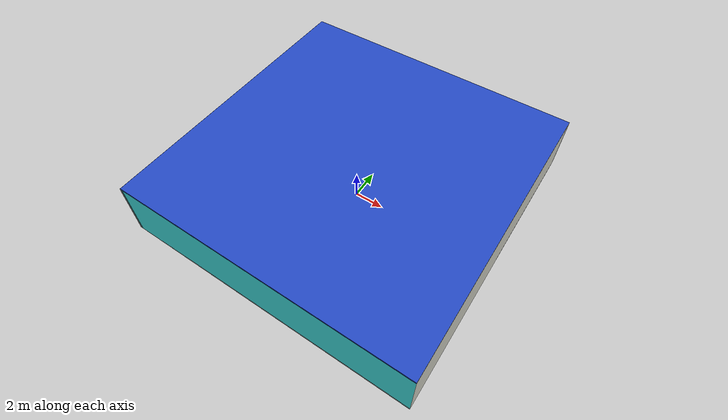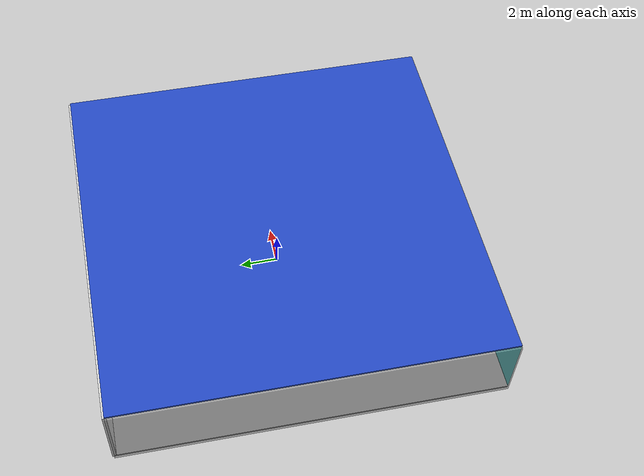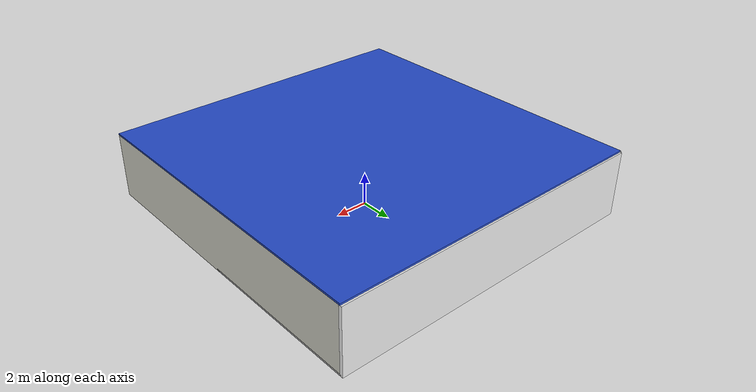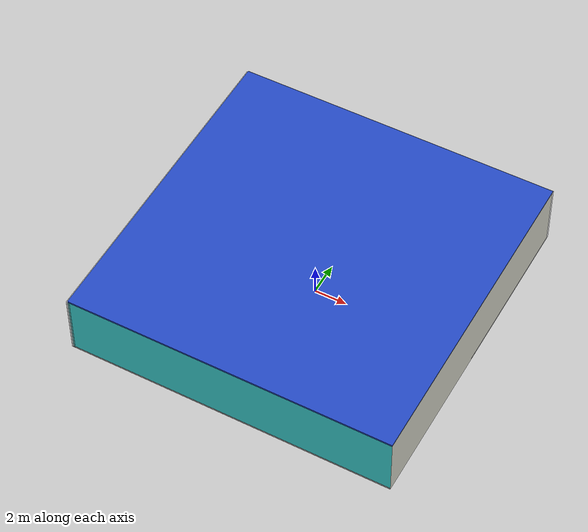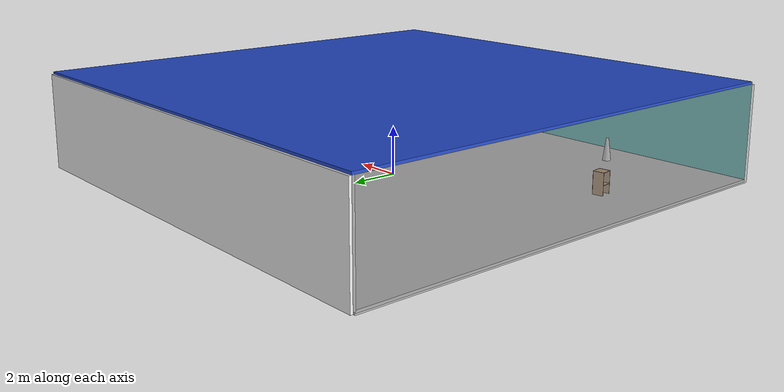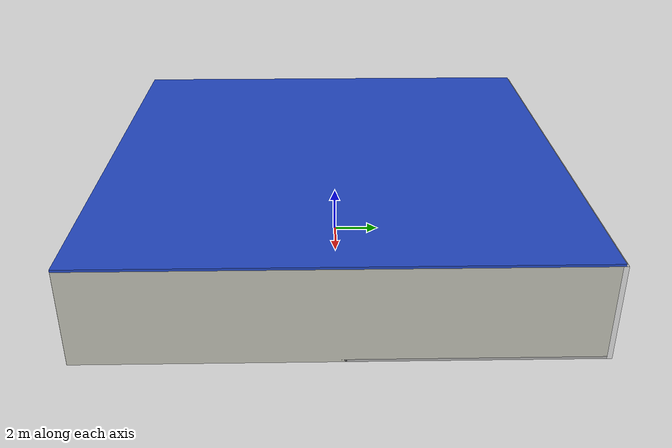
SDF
<sdf version="1.4">
 <world name="default">
  <physics type="ode">
   <max_step_size>0.001</max_step_size>
   <real_time_factor>1</real_time_factor>
   <real_time_update_rate>1000</real_time_update_rate>
   <gravity>0 0 -9.8</gravity>
  </physics>
  <scene><ambient>0.4 0.4 0.4 1</ambient><background>0.7 0.7 0.7 1</background><shadows>1</shadows></scene>
  <model name="Surrounding">
   <static>1</static>
   <link name="Ceiling">
    <collision name="Ceiling_Collision"><geometry><box><size>20 20 0.1</size></box></geometry></collision>
    <visual name="Ceiling_Visual">
     <geometry><box><size>20 20 0.1</size></box></geometry>
     <material>
      <script><uri>file://media/materials/scripts/gazebo.material</uri><name>Gazebo/BlueLaser</name></script>
     </material>
    </visual>
    <pose>0 0 4.05 0 0 0</pose>
   </link>
   <link name="Wall_South">
    <collision name="Wall_South_Collision">
     <geometry><box><size>20 0 4</size></box></geometry>
     <pose>0 0 2 0 -0 0</pose>
    </collision>
    <visual name="Wall_South_Visual">
     <pose>0 0 2 0 -0 0</pose>
     <geometry><box><size>20 0 4</size></box></geometry>
     <material>
      <script><uri>file://media/materials/scripts/gazebo.material</uri><name>Gazebo/TurquoiseGlow</name></script>
     </material>
    </visual>
    <velocity_decay><linear>0</linear><angular>0</angular></velocity_decay>
    <pose>0 -10 0 0 -0 0</pose>
   </link>
   <link name="Wall_East">
    <collision name="Wall_21_Collision">
     <geometry><box><size>20 0 4</size></box></geometry>
     <pose>0 0 2 0 -0 0</pose>
    </collision>
    <visual name="Wall_21_Visual">
     <pose>0 0 2 0 -0 0</pose>
     <geometry><box><size>20 0 4</size></box></geometry>
     <material>
      <script><uri>file://media/materials/scripts/gazebo.material</uri><name>Gazebo/PaintedWall</name></script>
     </material>
    </visual>
    <velocity_decay><linear>0</linear><angular>0</angular></velocity_decay>
    <pose>10 0 0 0 -0 1.5708</pose>
   </link>
   <link name="Wall_North">
    <collision name="Wall_22_Collision">
     <geometry><box><size>20 0.2 4</size></box></geometry>
     <pose>0 0 2 0 -0 0</pose>
    </collision>
    <visual name="Wall_22_Visual">
     <pose>0 0 2 0 -0 0</pose>
     <geometry><box><size>20 0.2 4</size></box></geometry>
     <material>
      <script><uri>file://media/materials/scripts/gazebo.material</uri><name>Gazebo/WhiteGlow</name></script>
     </material>
    </visual>
    <velocity_decay><linear>0</linear><angular>0</angular></velocity_decay>
    <pose>0 10 0 0 -0 0</pose>
   </link>
   <link name="Wall_West">
    <collision name="Wall_23_Collision">
     <geometry><box><size>20 0.2 4</size></box></geometry>
     <pose>0 0 2 0 -0 0</pose>
    </collision>
    <visual name="Wall_23_Visual">
     <pose>0 0 2 0 -0 0</pose>
     <geometry><box><size>20 0.2 4</size></box></geometry>
     <material>
      <script><uri>file://media/materials/scripts/gazebo.material</uri><name>Gazebo/GreyTransparent</name></script>
     </material>
    </visual>
    <velocity_decay><linear>0</linear><angular>0</angular></velocity_decay>
    <pose>-10 0 0 0 0 -1.5708</pose>
   </link>
   <link name="Ground_link">
    <collision name="collision">
     <pose>0 0 .05 0 -0 0</pose>
     <geometry><box><size>20 20 0.1</size></box></geometry>
    </collision>
    <visual name="visual">
     <pose>0 0 .05 0 -0 0</pose>
     <geometry><box><size>20 20 0.1</size></box></geometry>
     <material>
      <script><uri>file://media/materials/scripts/gazebo.material</uri><name>Gazebo/CloudySky</name></script>
     </material>
    </visual>
   </link>
   <static>1</static>
  </model>
  <spherical_coordinates>
   <surface_model>EARTH_WGS84</surface_model>
   <latitude_deg>0</latitude_deg>
   <longitude_deg>0</longitude_deg>
   <elevation>0</elevation>
   <heading_deg>0</heading_deg>
  </spherical_coordinates>
  <light name="lightball_0" type="diffuse">
   <diffuse>0.8 0.8 0.8 1</diffuse>
   <specular>0.2 0.2 0.2 1</specular>
   <attenuation>
    <range>100</range>
    <constant>0.7</constant>
    <linear>0.01</linear>
    <quadratic>0.001</quadratic>
   </attenuation>
   <direction>-0.5 0.1 -0.9</direction>
   <pose>4.8939191614 9.32072646609 1.46523766127 0 0 0</pose>
  </light>
  <light name="lightball_1" type="diffuse">
   <diffuse>0.8 0.8 0.8 1</diffuse>
   <specular>0.2 0.2 0.2 1</specular>
   <attenuation>
    <range>100</range>
    <constant>0.7</constant>
    <linear>0.01</linear>
    <quadratic>0.001</quadratic>
   </attenuation>
   <direction>-0.5 0.1 -0.9</direction>
   <pose>-1.97290619913 -4.1263792323 0.915828953086 0 0 0</pose>
  </light>
  <light name="lightball_2" type="diffuse">
   <diffuse>0.8 0.8 0.8 1</diffuse>
   <specular>0.2 0.2 0.2 1</specular>
   <attenuation>
    <range>100</range>
    <constant>0.7</constant>
    <linear>0.01</linear>
    <quadratic>0.001</quadratic>
   </attenuation>
   <direction>-0.5 0.1 -0.9</direction>
   <pose>-9.96269895047 1.0470107274 3.32632293629 0 0 0</pose>
  </light>
  <light name="lightball_3" type="diffuse">
   <diffuse>0.8 0.8 0.8 1</diffuse>
   <specular>0.2 0.2 0.2 1</specular>
   <attenuation>
    <range>100</range>
    <constant>0.7</constant>
    <linear>0.01</linear>
    <quadratic>0.001</quadratic>
   </attenuation>
   <direction>-0.5 0.1 -0.9</direction>
   <pose>-3.91532110716 4.03598083177 2.49984798196 0 0 0</pose>
  </light>
  <light name="lightball_4" type="diffuse">
   <diffuse>0.8 0.8 0.8 1</diffuse>
   <specular>0.2 0.2 0.2 1</specular>
   <attenuation>
    <range>100</range>
    <constant>0.7</constant>
    <linear>0.01</linear>
    <quadratic>0.001</quadratic>
   </attenuation>
   <direction>-0.5 0.1 -0.9</direction>
   <pose>-5.0893169725 8.24384698765 0.84884518126 0 0 0</pose>
  </light>
  <light name="lightball_5" type="diffuse">
   <diffuse>0.8 0.8 0.8 1</diffuse>
   <specular>0.2 0.2 0.2 1</specular>
   <attenuation>
    <range>100</range>
    <constant>0.7</constant>
    <linear>0.01</linear>
    <quadratic>0.001</quadratic>
   </attenuation>
   <direction>-0.5 0.1 -0.9</direction>
   <pose>-3.14058831239 7.84775054047 1.54066691102 0 0 0</pose>
  </light>
  <light name="lightball_6" type="diffuse">
   <diffuse>0.8 0.8 0.8 1</diffuse>
   <specular>0.2 0.2 0.2 1</specular>
   <attenuation>
    <range>100</range>
    <constant>0.7</constant>
    <linear>0.01</linear>
    <quadratic>0.001</quadratic>
   </attenuation>
   <direction>-0.5 0.1 -0.9</direction>
   <pose>-9.04627884509 -1.14343500035 1.96002968103 0 0 0</pose>
  </light>
  <light name="lightball_7" type="diffuse">
   <diffuse>0.8 0.8 0.8 1</diffuse>
   <specular>0.2 0.2 0.2 1</specular>
   <attenuation>
    <range>100</range>
    <constant>0.7</constant>
    <linear>0.01</linear>
    <quadratic>0.001</quadratic>
   </attenuation>
   <direction>-0.5 0.1 -0.9</direction>
   <pose>-4.92354761699 -6.7133625707 3.13159532389 0 0 0</pose>
  </light>
  <include><uri>model://cabinet</uri><pose>-7.48096215027 -4.04769207114 0 0 0 0.15421579962</pose></include>
  <include>
   <uri>model://construction_cone</uri>
   <pose>-4.51346423773 -8.2160576957 0 0 0 2.17305511854</pose>
  </include>
  <include>
   <uri>model://robocup_3Dsim_goal</uri>
   <pose>1.87031728855 7.11393413833 0 0 0 2.04962959368</pose>
  </include>
  <include><uri>model://cabinet</uri><pose>4.01562477453 1.99280462326 0 0 0 1.24851041816</pose></include>
  <include>
   <uri>model://textured_shapes</uri>
   <pose>5.14686963332 5.11761914151 0 0 0 1.72784510158</pose>
  </include>
 </world>
</sdf>

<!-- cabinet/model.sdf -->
<sdf version="1.5">
  <model name="cabinet">
    <static>true</static>
    <link name="cabinet_bottom_plate">
      <inertial>
        <pose>0 0 -1 0 0 0</pose>
        <inertia>
          <ixx>2.050000</ixx>
          <ixy>0</ixy>
          <ixz>0</ixz>
          <iyy>2.050000</iyy>
          <iyz>0</iyz>
          <izz>2.050000</izz>
        </inertia>
        <mass>25.000000</mass>
      </inertial>
      <collision name="cabinet_bottom_plate_geom">
        <pose>0 0 0.010000 0 0 0</pose>
        <geometry>
          <box>
            <size>0.450000 0.450000 0.020000</size>
          </box>
        </geometry>
      </collision>
      <visual name="cabinet_bottom_plate_geom_visual">
        <pose>0 0 0.010000 0 0 0</pose>
        <geometry>
          <box>
            <size>0.450000 0.450000 0.020000</size>
          </box>
        </geometry>
        <material>
          <script>
            <uri>model://media/materials/scripts/gazebo.material</uri>
            <name>Gazebo/Wood</name>
          </script>
        </material>
      </visual>
      <collision name="cabinet_bottom_plate_geom_cabinet_back_plate">
        <pose>0.235000 0 0.510000 0 0 0</pose>
        <geometry>
          <box>
            <size>0.020000 0.450000 1.020000</size>
          </box>
        </geometry>
      </collision>
      <visual name="cabinet_bottom_plate_geom_cabinet_back_plate_visual">
        <pose>0.235000 0 0.510000 0 0 0</pose>
        <geometry>
          <box>
            <size>0.020000 0.450000 1.020000</size>
          </box>
        </geometry>
        <material>
          <script>
            <uri>model://media/materials/scripts/gazebo.material</uri>
            <name>Gazebo/Wood</name>
          </script>
        </material>
      </visual>
      <collision name="cabinet_bottom_plate_geom_cabinet_left_plate">
        <pose>0 0.235000 0.510000 0 0 0</pose>
        <geometry>
          <box>
            <size>0.450000 0.020000 1.020000</size>
          </box>
        </geometry>
      </collision>
      <visual name="cabinet_bottom_plate_geom_cabinet_left_plate_visual">
        <pose>0 0.235000 0.510000 0 0 0</pose>
        <geometry>
          <box>
            <size>0.450000 0.020000 1.020000</size>
          </box>
        </geometry>
        <material>
          <script>
            <uri>model://media/materials/scripts/gazebo.material</uri>
            <name>Gazebo/Wood</name>
          </script>
        </material>
      </visual>
      <collision name="cabinet_bottom_plate_geom_cabinet_middle_plate">
        <pose>0 0 0.510000 0 0 0</pose>
        <geometry>
          <box>
            <size>0.450000 0.450000 0.020000</size>
          </box>
        </geometry>
      </collision>
      <visual name="cabinet_bottom_plate_geom_cabinet_middle_plate_visual">
        <pose>0 0 0.510000 0 0 0</pose>
        <geometry>
          <box>
            <size>0.450000 0.450000 0.020000</size>
          </box>
        </geometry>
        <material>
          <script>
            <uri>model://media/materials/scripts/gazebo.material</uri>
            <name>Gazebo/Wood</name>
          </script>
        </material>
      </visual>
      <collision name="cabinet_bottom_plate_geom_cabinet_right_plate">
        <pose>0 -0.235000 0.510000 0 0 0</pose>
        <geometry>
          <box>
            <size>0.450000 0.020000 1.020000</size>
          </box>
        </geometry>
      </collision>
      <visual name="cabinet_bottom_plate_geom_cabinet_right_plate_visual">
        <pose>0 -0.235000 0.510000 0 0 0</pose>
        <geometry>
          <box>
            <size>0.450000 0.020000 1.020000</size>
          </box>
        </geometry>
        <material>
          <script>
            <uri>model://media/materials/scripts/gazebo.material</uri>
            <name>Gazebo/Wood</name>
          </script>
        </material>
      </visual>
      <collision name="cabinet_bottom_plate_geom_cabinet_top_plate">
        <pose>0 0 1.010000 0 0 0</pose>
        <geometry>
          <box>
            <size>0.450000 0.450000 0.020000</size>
          </box>
        </geometry>
      </collision>
      <visual name="cabinet_bottom_plate_geom_cabinet_top_plate_visual">
        <pose>0 0 1.010000 0 0 0</pose>
        <geometry>
          <box>
            <size>0.450000 0.450000 0.020000</size>
          </box>
        </geometry>
        <material>
          <script>
            <uri>model://media/materials/scripts/gazebo.material</uri>
            <name>Gazebo/Wood</name>
          </script>
        </material>
      </visual>
    </link>
  </model>
</sdf>

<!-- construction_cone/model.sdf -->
<sdf version="1.5">
  <model name="Construction Cone">
    <link name="link">
      <collision name="collision">
        <geometry>
          <mesh>
            <scale>10 10 10</scale>
            <uri>file://isr-testbed/construction_cone/meshes/construction_cone.dae</uri>
          </mesh>
        </geometry>
      </collision>
      <visual name="visual">
        <geometry>
          <mesh>
            <scale>10 10 10</scale>
            <uri>file://isr-testbed/construction_cone/meshes/construction_cone.dae</uri>
          </mesh>
        </geometry>
      </visual>
    </link>
  </model>
</sdf>

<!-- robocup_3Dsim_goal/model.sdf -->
<sdf version="1.5">
  <model name="robocup_3d_goal">
    <static>true</static>
    <link name="left_post">
      <pose>0 1.05 0.45 0 0 0</pose>
      <collision name="collision">
        <geometry>
          <cylinder>
            <radius>0.05</radius>
            <length>0.9</length>
          </cylinder>
        </geometry>
      </collision>
      <visual name="visual">
        <geometry>
          <cylinder>
            <radius>0.05</radius>
            <length>0.9</length>
          </cylinder>
        </geometry>
        <material>
          <script>
            <uri>file://media/materials/scripts/gazebo.material</uri>
            <name>Gazebo/ZincYellow</name>
          </script>
        </material>
      </visual>
    </link>
    <link name="left_support_horiz_lower">
      <pose>0.30 1.05 0.01 0 0 0</pose>
      <collision name="collision">
        <geometry>
          <box>
            <size>0.50 0.02 0.02</size>
          </box>
        </geometry>
      </collision>
      <visual name="visual">
        <geometry>
          <box>
            <size>0.50 0.02 0.02</size>
          </box>
        </geometry>
        <material>
          <script>
            <uri>file://media/materials/scripts/gazebo.material</uri>
            <name>Gazebo/White</name>
          </script>
        </material>
      </visual>
    </link>
    <link name="left_support_horiz_upper">
      <pose>0.30 1.05 0.79 0 0 0</pose>
      <collision name="collision">
        <geometry>
          <box>
            <size>0.50 0.02 0.02</size>
          </box>
        </geometry>
      </collision>
      <visual name="visual">
        <geometry>
          <box>
            <size>0.50 0.02 0.02</size>
          </box>
        </geometry>
        <material>
          <script>
            <uri>file://media/materials/scripts/gazebo.material</uri>
            <name>Gazebo/White</name>
          </script>
        </material>
      </visual>
    </link>
    <link name="left_support_vertical">
      <pose>0.56 1.05 0.4 0 1.5708 0</pose>
      <collision name="collision">
        <geometry>
          <box>
            <size>0.80 0.02 0.02</size>
          </box>
        </geometry>
      </collision>
      <visual name="visual">
        <geometry>
          <box>
            <size>0.80 0.02 0.02</size>
          </box>
        </geometry>
        <material>
          <script>
            <uri>file://media/materials/scripts/gazebo.material</uri>
            <name>Gazebo/White</name>
          </script>
        </material>
      </visual>
    </link>
    <link name="right_support_horiz_lower">
      <pose>0.30 -1.05 0.01 0 0 0</pose>
      <collision name="collision">
        <geometry>
          <box>
            <size>0.50 0.02 0.02</size>
          </box>
        </geometry>
      </collision>
      <visual name="visual">
        <geometry>
          <box>
            <size>0.50 0.02 0.02</size>
          </box>
        </geometry>
        <material>
          <script>
            <uri>file://media/materials/scripts/gazebo.material</uri>
            <name>Gazebo/White</name>
          </script>
        </material>
      </visual>
    </link>
    <link name="right_support_horiz_upper">
      <pose>0.30 -1.05 0.79 0 0 0</pose>
      <collision name="collision">
        <geometry>
          <box>
            <size>0.50 0.02 0.02</size>
          </box>
        </geometry>
      </collision>
      <visual name="visual">
        <geometry>
          <box>
            <size>0.50 0.02 0.02</size>
          </box>
        </geometry>
        <material>
          <script>
            <uri>file://media/materials/scripts/gazebo.material</uri>
            <name>Gazebo/White</name>
          </script>
        </material>
      </visual>
    </link>
    <link name="right_support_vertical">
      <pose>0.56 -1.05 0.4 0 1.5708 0</pose>
      <collision name="collision">
        <geometry>
          <box>
            <size>0.80 0.02 0.02</size>
          </box>
        </geometry>
      </collision>
      <visual name="visual">
        <geometry>
          <box>
            <size>0.80 0.02 0.02</size>
          </box>
        </geometry>
        <material>
          <script>
            <uri>file://media/materials/scripts/gazebo.material</uri>
            <name>Gazebo/White</name>
          </script>
        </material>
      </visual>
    </link>
    <link name="center_support_horiz_lower">
      <pose>0.56 0 0.01 0 1.5708 0</pose>
      <collision name="collision">
        <geometry>
          <box>
            <size>0.02 2.08 0.02</size>
          </box>
        </geometry>
      </collision>
      <visual name="visual">
        <geometry>
          <box>
            <size>0.02 2.08 0.02</size>
          </box>
        </geometry>
        <material>
          <script>
            <uri>file://media/materials/scripts/gazebo.material</uri>
            <name>Gazebo/White</name>
          </script>
        </material>
      </visual>
    </link>
    <link name="center_support_horiz_upper">
      <pose>0.56 0 0.79 0 1.5708 0</pose>
      <collision name="collision">
        <geometry>
          <box>
            <size>0.02 2.08 0.02</size>
          </box>
        </geometry>
      </collision>
      <visual name="visual">
        <geometry>
          <box>
            <size>0.02 2.08 0.02</size>
          </box>
        </geometry>
        <material>
          <script>
            <uri>file://media/materials/scripts/gazebo.material</uri>
            <name>Gazebo/White</name>
          </script>
        </material>
      </visual>
    </link>
    <link name="right_post">
      <pose>0 -1.05 0.45 0 0 0</pose>
      <collision name="collision">
        <geometry>
          <cylinder>
            <radius>0.05</radius>
            <length>0.9</length>
          </cylinder>
        </geometry>
      </collision>
      <visual name="visual">
        <geometry>
          <cylinder>
            <radius>0.05</radius>
            <length>0.9</length>
          </cylinder>
        </geometry>
        <material>
          <script>
            <uri>file://media/materials/scripts/gazebo.material</uri>
            <name>Gazebo/ZincYellow</name>
          </script>
        </material>
      </visual>
    </link>
    <link name="crossbar">
      <pose>0 0 0.85 1.57 1.57 0</pose>
      <collision name="collision">
        <geometry>
          <cylinder>
            <radius>0.05</radius>
            <length>2.0</length>
          </cylinder>
        </geometry>
      </collision>
      <visual name="visual">
        <geometry>
          <cylinder>
            <radius>0.05</radius>
            <length>2.0</length>
          </cylinder>
        </geometry>
        <material>
          <script>
            <uri>file://media/materials/scripts/gazebo.material</uri>
            <name>Gazebo/ZincYellow</name>
          </script>
        </material>
      </visual>
    </link>
    <link name="center_net">
      <pose>0.56 0 0.40 0 0 0</pose>
      <collision name="collision">
        <geometry>
          <box>
            <size>0.01 2.1 0.80</size>
          </box>
        </geometry>
      </collision>
      <visual name="visual">
        <geometry>
          <box>
            <size>0.01 2.1 0.80</size>
          </box>
        </geometry>
        <material>
          <script>
            <uri>model://../model_source/models/robocup09_spl_field/materials/scripts/</uri>
            <uri>model://../model_source/models/robocup09_spl_field/materials/textures/</uri>
            <name>RoboCup/Net</name>
          </script>
        </material>
      </visual>
    </link>
    <link name="left_net">
      <pose>0.30 1.05 0.40 0 0 0</pose>
      <collision name="collision">
        <geometry>
          <box>
            <size>0.50 0.01 0.76</size>
          </box>
        </geometry>
      </collision>
      <visual name="visual">
        <geometry>
          <box>
            <size>0.50 0.01 0.76</size>
          </box>
        </geometry>
        <material>
          <script>
            <uri>model://../model_source/models/robocup09_spl_field/materials/scripts/</uri>
            <uri>model://../model_source/models/robocup09_spl_field/materials/textures/</uri>
            <name>RoboCup/Net</name>
          </script>
        </material>
      </visual>
    </link>
    <link name="right_net">
      <pose>0.30 -1.05 0.40 0 0 0</pose>
      <collision name="collision">
        <geometry>
          <box>
            <size>0.50 0.01 0.76</size>
          </box>
        </geometry>
      </collision>
      <visual name="visual">
        <geometry>
          <box>
            <size>0.50 0.01 0.76</size>
          </box>
        </geometry>
        <material>
          <script>
            <uri>model://../model_source/models/robocup09_spl_field/materials/scripts/</uri>
            <uri>model://../model_source/models/robocup09_spl_field/materials/textures/</uri>
            <name>RoboCup/Net</name>
          </script>
        </material>
      </visual>
    </link>
  </model>
</sdf>

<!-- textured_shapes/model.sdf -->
<sdf version="1.6">
  <model name="textured_shapes">
    <pose>0 0 0.5 0 0 0</pose>
    <link name="box">
      <pose>0 -1.5 0 0 0 0</pose>
      <collision name="collision">
        <geometry>
          <box>
            <size>1 1 1</size>
          </box>
        </geometry>
      </collision>
      <visual name="visual">
        <geometry>
          <box>
            <size>1 1 1</size>
          </box>
        </geometry>
        <material>
          <script>
            <uri>model://../model_source/models/textured_shapes/materials/scripts</uri>
            <uri>model://../model_source/models/textured_shapes/materials/textures</uri>
            <name>TexturedShape/Squares</name>
          </script>
        </material>
      </visual>
    </link>
    <link name="sphere">
      <collision name="collision">
        <geometry>
          <sphere>
            <radius>0.5</radius>
          </sphere>
        </geometry>
      </collision>
      <visual name="visual">
        <geometry>
          <sphere>
            <radius>0.5</radius>
          </sphere>
        </geometry>
        <material>
          <script>
            <uri>model://../model_source/models/textured_shapes/materials/scripts</uri>
            <uri>model://../model_source/models/textured_shapes/materials/textures</uri>
            <name>TexturedShape/Squares</name>
          </script>
        </material>
      </visual>
    </link>
    <link name="cylinder">
      <pose>0 1.5 0 0 0 0</pose>
      <collision name="collision">
        <geometry>
          <cylinder>
            <radius>0.5</radius>
            <length>1</length>
          </cylinder>
        </geometry>
      </collision>
      <visual name="visual">
        <geometry>
          <cylinder>
            <radius>0.5</radius>
            <length>1</length>
          </cylinder>
        </geometry>
        <material>
          <script>
            <uri>model://../model_source/models/textured_shapes/materials/scripts</uri>
            <uri>model://../model_source/models/textured_shapes/materials/textures</uri>
            <name>TexturedShape/Squares</name>
          </script>
        </material>
      </visual>
    </link>
  </model>
</sdf>
